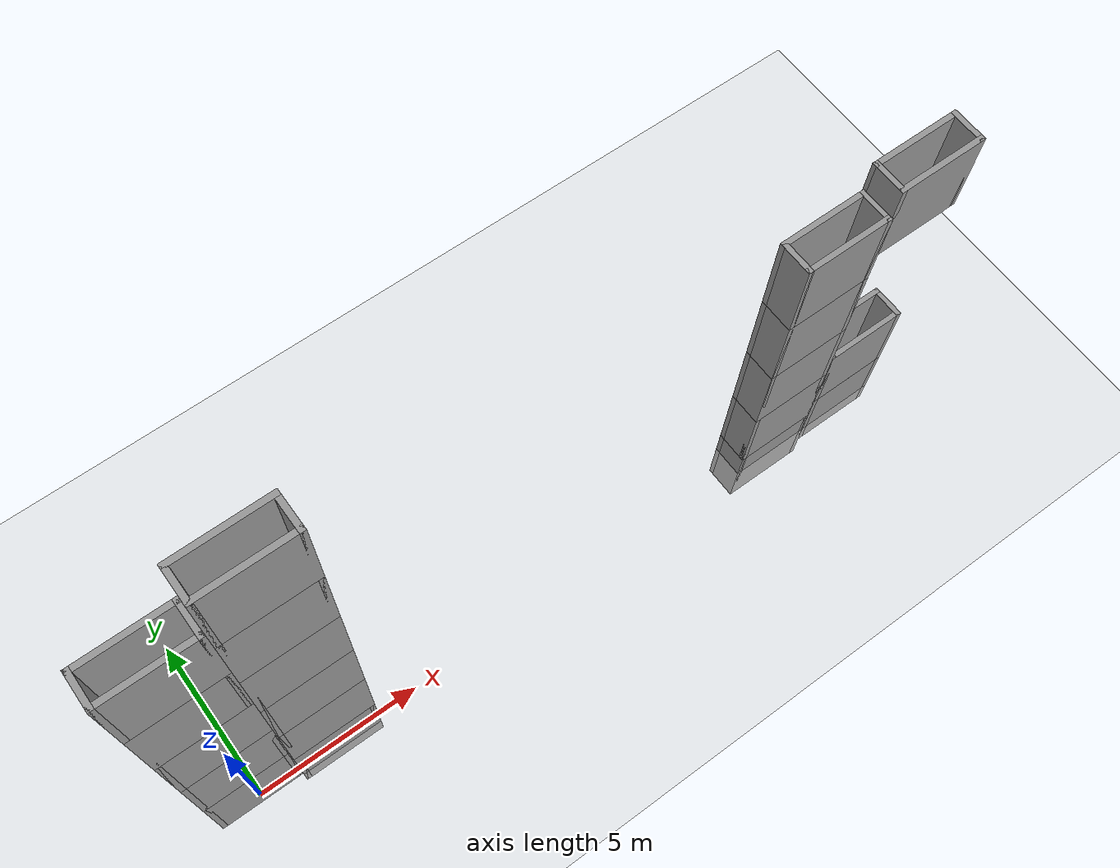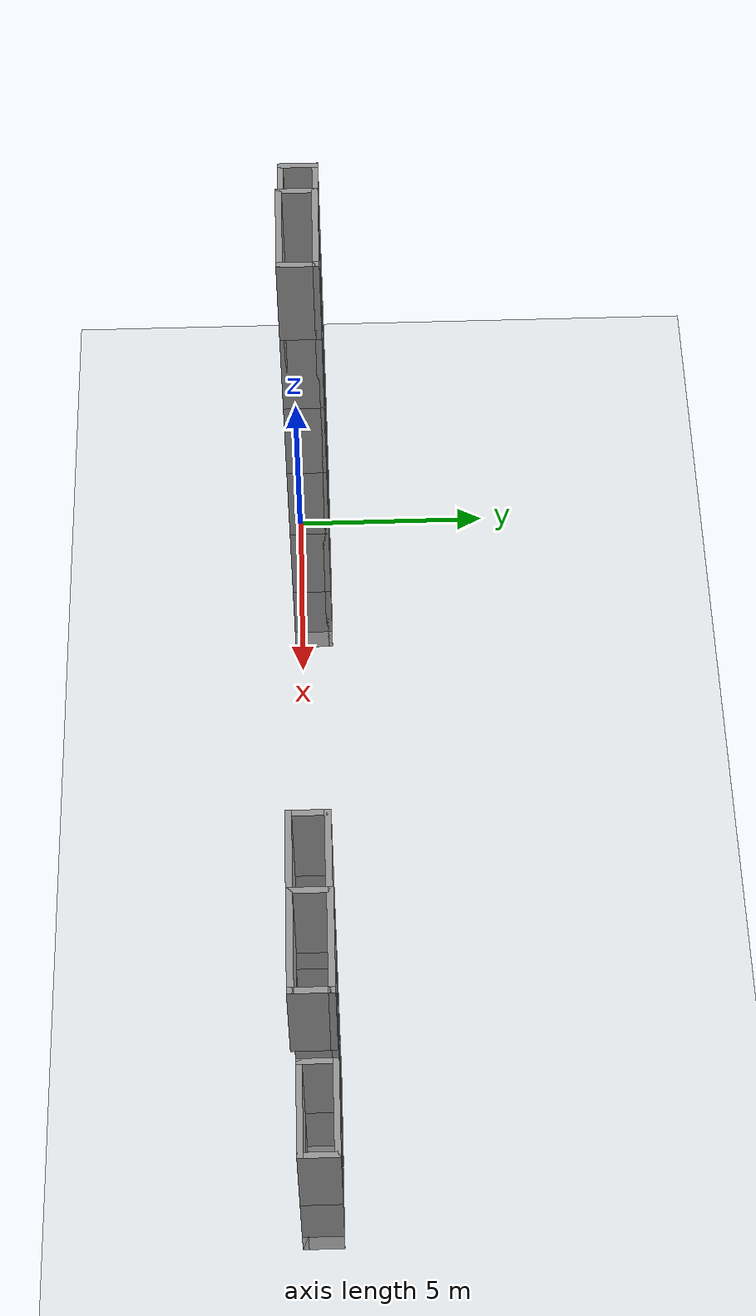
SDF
<sdf version="1.6">
 <world name="default">
  <model name="ground_plane">
   <static>1</static>
   <link name="link">
    <collision name="collision">
     <geometry><plane><normal>0 0 1</normal><size>100 100</size></plane></geometry>
     <surface><friction><ode><mu>100</mu><mu2>50</mu2></ode></friction></surface>
    </collision>
    <visual name="visual">
     <cast_shadows>0</cast_shadows>
     <geometry><plane><normal>0 0 1</normal><size>100 100</size></plane></geometry>
     <material>
      <script><uri>file://media/materials/scripts/gazebo.material</uri><name>Gazebo/Grey</name></script>
     </material>
    </visual>
   </link>
  </model>
  <model name="column25">
   <pose>-0.023775 0.294916 10.1143 0 -0 0</pose>
   <link name="Wall_0">
    <collision name="Wall_0_Collision">
     <geometry><box><size>2.5 0.15 2.5</size></box></geometry>
     <pose>0 0 1.25 0 -0 0</pose>
    </collision>
    <visual name="Wall_0_Visual">
     <pose>0 0 1.25 0 -0 0</pose>
     <geometry><box><size>2.5 0.15 2.5</size></box></geometry>
     <material>
      <script><uri>file://media/materials/scripts/gazebo.material</uri><name>Gazebo/Grey</name></script>
      <ambient>1 1 1 1</ambient>
     </material>
    </visual>
    <pose>0 -0.425 0 0 -0 0</pose>
   </link>
   <link name="Wall_1">
    <collision name="Wall_1_Collision">
     <geometry><box><size>1 0.15 2.5</size></box></geometry>
     <pose>0 0 1.25 0 -0 0</pose>
    </collision>
    <visual name="Wall_1_Visual">
     <pose>0 0 1.25 0 -0 0</pose>
     <geometry><box><size>1 0.15 2.5</size></box></geometry>
     <material>
      <script><uri>file://media/materials/scripts/gazebo.material</uri><name>Gazebo/Grey</name></script>
      <ambient>1 1 1 1</ambient>
     </material>
    </visual>
    <pose>1.175 0 0 0 -0 1.5708</pose>
   </link>
   <link name="Wall_2">
    <collision name="Wall_2_Collision">
     <geometry><box><size>2.5 0.15 2.5</size></box></geometry>
     <pose>0 0 1.25 0 -0 0</pose>
    </collision>
    <visual name="Wall_2_Visual">
     <pose>0 0 1.25 0 -0 0</pose>
     <geometry><box><size>2.5 0.15 2.5</size></box></geometry>
     <material>
      <script><uri>file://media/materials/scripts/gazebo.material</uri><name>Gazebo/Grey</name></script>
      <ambient>1 1 1 1</ambient>
     </material>
    </visual>
    <pose>0 0.425 0 0 -0 3.14159</pose>
   </link>
   <link name="Wall_3">
    <collision name="Wall_3_Collision">
     <geometry><box><size>1 0.15 2.5</size></box></geometry>
     <pose>0 0 1.25 0 -0 0</pose>
    </collision>
    <visual name="Wall_3_Visual">
     <pose>0 0 1.25 0 -0 0</pose>
     <geometry><box><size>1 0.15 2.5</size></box></geometry>
     <material>
      <script><uri>file://media/materials/scripts/gazebo.material</uri><name>Gazebo/Grey</name></script>
      <ambient>1 1 1 1</ambient>
     </material>
    </visual>
    <pose>-1.175 0 0 0 0 -1.5708</pose>
   </link>
   <static>1</static>
  </model>
  <model name="column25_clone">
   <pose>-0.023775 0.294916 7.61428 0 -0 0</pose>
   <link name="Wall_0">
    <collision name="Wall_0_Collision">
     <geometry><box><size>2.5 0.15 2.5</size></box></geometry>
     <pose>0 0 1.25 0 -0 0</pose>
    </collision>
    <visual name="Wall_0_Visual">
     <pose>0 0 1.25 0 -0 0</pose>
     <geometry><box><size>2.5 0.15 2.5</size></box></geometry>
     <material>
      <script><uri>file://media/materials/scripts/gazebo.material</uri><name>Gazebo/Grey</name></script>
      <ambient>1 1 1 1</ambient>
     </material>
    </visual>
    <pose>0 -0.425 0 0 -0 0</pose>
   </link>
   <link name="Wall_1">
    <collision name="Wall_1_Collision">
     <geometry><box><size>1 0.15 2.5</size></box></geometry>
     <pose>0 0 1.25 0 -0 0</pose>
    </collision>
    <visual name="Wall_1_Visual">
     <pose>0 0 1.25 0 -0 0</pose>
     <geometry><box><size>1 0.15 2.5</size></box></geometry>
     <material>
      <script><uri>file://media/materials/scripts/gazebo.material</uri><name>Gazebo/Grey</name></script>
      <ambient>1 1 1 1</ambient>
     </material>
    </visual>
    <pose>1.175 0 0 0 -0 1.5708</pose>
   </link>
   <link name="Wall_2">
    <collision name="Wall_2_Collision">
     <geometry><box><size>2.5 0.15 2.5</size></box></geometry>
     <pose>0 0 1.25 0 -0 0</pose>
    </collision>
    <visual name="Wall_2_Visual">
     <pose>0 0 1.25 0 -0 0</pose>
     <geometry><box><size>2.5 0.15 2.5</size></box></geometry>
     <material>
      <script><uri>file://media/materials/scripts/gazebo.material</uri><name>Gazebo/Grey</name></script>
      <ambient>1 1 1 1</ambient>
     </material>
    </visual>
    <pose>0 0.425 0 0 -0 3.14159</pose>
   </link>
   <link name="Wall_3">
    <collision name="Wall_3_Collision">
     <geometry><box><size>1 0.15 2.5</size></box></geometry>
     <pose>0 0 1.25 0 -0 0</pose>
    </collision>
    <visual name="Wall_3_Visual">
     <pose>0 0 1.25 0 -0 0</pose>
     <geometry><box><size>1 0.15 2.5</size></box></geometry>
     <material>
      <script><uri>file://media/materials/scripts/gazebo.material</uri><name>Gazebo/Grey</name></script>
      <ambient>1 1 1 1</ambient>
     </material>
    </visual>
    <pose>-1.175 0 0 0 0 -1.5708</pose>
   </link>
   <static>1</static>
  </model>
  <model name="column25_clone_0">
   <pose>-0.023776 0.294916 5.11428 0 -0 0</pose>
   <link name="Wall_0">
    <collision name="Wall_0_Collision">
     <geometry><box><size>2.5 0.15 2.5</size></box></geometry>
     <pose>0 0 1.25 0 -0 0</pose>
    </collision>
    <visual name="Wall_0_Visual">
     <pose>0 0 1.25 0 -0 0</pose>
     <geometry><box><size>2.5 0.15 2.5</size></box></geometry>
     <material>
      <script><uri>file://media/materials/scripts/gazebo.material</uri><name>Gazebo/Grey</name></script>
      <ambient>1 1 1 1</ambient>
     </material>
    </visual>
    <pose>0 -0.425 0 0 -0 0</pose>
   </link>
   <link name="Wall_1">
    <collision name="Wall_1_Collision">
     <geometry><box><size>1 0.15 2.5</size></box></geometry>
     <pose>0 0 1.25 0 -0 0</pose>
    </collision>
    <visual name="Wall_1_Visual">
     <pose>0 0 1.25 0 -0 0</pose>
     <geometry><box><size>1 0.15 2.5</size></box></geometry>
     <material>
      <script><uri>file://media/materials/scripts/gazebo.material</uri><name>Gazebo/Grey</name></script>
      <ambient>1 1 1 1</ambient>
     </material>
    </visual>
    <pose>1.175 0 0 0 -0 1.5708</pose>
   </link>
   <link name="Wall_2">
    <collision name="Wall_2_Collision">
     <geometry><box><size>2.5 0.15 2.5</size></box></geometry>
     <pose>0 0 1.25 0 -0 0</pose>
    </collision>
    <visual name="Wall_2_Visual">
     <pose>0 0 1.25 0 -0 0</pose>
     <geometry><box><size>2.5 0.15 2.5</size></box></geometry>
     <material>
      <script><uri>file://media/materials/scripts/gazebo.material</uri><name>Gazebo/Grey</name></script>
      <ambient>1 1 1 1</ambient>
     </material>
    </visual>
    <pose>0 0.425 0 0 -0 3.14159</pose>
   </link>
   <link name="Wall_3">
    <collision name="Wall_3_Collision">
     <geometry><box><size>1 0.15 2.5</size></box></geometry>
     <pose>0 0 1.25 0 -0 0</pose>
    </collision>
    <visual name="Wall_3_Visual">
     <pose>0 0 1.25 0 -0 0</pose>
     <geometry><box><size>1 0.15 2.5</size></box></geometry>
     <material>
      <script><uri>file://media/materials/scripts/gazebo.material</uri><name>Gazebo/Grey</name></script>
      <ambient>1 1 1 1</ambient>
     </material>
    </visual>
    <pose>-1.175 0 0 0 0 -1.5708</pose>
   </link>
   <static>1</static>
  </model>
  <model name="column25_clone_1">
   <pose>-0.023776 0.294916 2.61428 0 -0 0</pose>
   <link name="Wall_0">
    <collision name="Wall_0_Collision">
     <geometry><box><size>2.5 0.15 2.5</size></box></geometry>
     <pose>0 0 1.25 0 -0 0</pose>
    </collision>
    <visual name="Wall_0_Visual">
     <pose>0 0 1.25 0 -0 0</pose>
     <geometry><box><size>2.5 0.15 2.5</size></box></geometry>
     <material>
      <script><uri>file://media/materials/scripts/gazebo.material</uri><name>Gazebo/Grey</name></script>
      <ambient>1 1 1 1</ambient>
     </material>
    </visual>
    <pose>0 -0.425 0 0 -0 0</pose>
   </link>
   <link name="Wall_1">
    <collision name="Wall_1_Collision">
     <geometry><box><size>1 0.15 2.5</size></box></geometry>
     <pose>0 0 1.25 0 -0 0</pose>
    </collision>
    <visual name="Wall_1_Visual">
     <pose>0 0 1.25 0 -0 0</pose>
     <geometry><box><size>1 0.15 2.5</size></box></geometry>
     <material>
      <script><uri>file://media/materials/scripts/gazebo.material</uri><name>Gazebo/Grey</name></script>
      <ambient>1 1 1 1</ambient>
     </material>
    </visual>
    <pose>1.175 0 0 0 -0 1.5708</pose>
   </link>
   <link name="Wall_2">
    <collision name="Wall_2_Collision">
     <geometry><box><size>2.5 0.15 2.5</size></box></geometry>
     <pose>0 0 1.25 0 -0 0</pose>
    </collision>
    <visual name="Wall_2_Visual">
     <pose>0 0 1.25 0 -0 0</pose>
     <geometry><box><size>2.5 0.15 2.5</size></box></geometry>
     <material>
      <script><uri>file://media/materials/scripts/gazebo.material</uri><name>Gazebo/Grey</name></script>
      <ambient>1 1 1 1</ambient>
     </material>
    </visual>
    <pose>0 0.425 0 0 -0 3.14159</pose>
   </link>
   <link name="Wall_3">
    <collision name="Wall_3_Collision">
     <geometry><box><size>1 0.15 2.5</size></box></geometry>
     <pose>0 0 1.25 0 -0 0</pose>
    </collision>
    <visual name="Wall_3_Visual">
     <pose>0 0 1.25 0 -0 0</pose>
     <geometry><box><size>1 0.15 2.5</size></box></geometry>
     <material>
      <script><uri>file://media/materials/scripts/gazebo.material</uri><name>Gazebo/Grey</name></script>
      <ambient>1 1 1 1</ambient>
     </material>
    </visual>
    <pose>-1.175 0 0 0 0 -1.5708</pose>
   </link>
   <static>1</static>
  </model>
  <model name="column25_clone_2">
   <pose>-0.023776 0.294916 0.114275 0 -0 0</pose>
   <link name="Wall_0">
    <collision name="Wall_0_Collision">
     <geometry><box><size>2.5 0.15 2.5</size></box></geometry>
     <pose>0 0 1.25 0 -0 0</pose>
    </collision>
    <visual name="Wall_0_Visual">
     <pose>0 0 1.25 0 -0 0</pose>
     <geometry><box><size>2.5 0.15 2.5</size></box></geometry>
     <material>
      <script><uri>file://media/materials/scripts/gazebo.material</uri><name>Gazebo/Grey</name></script>
      <ambient>1 1 1 1</ambient>
     </material>
    </visual>
    <pose>0 -0.425 0 0 -0 0</pose>
   </link>
   <link name="Wall_1">
    <collision name="Wall_1_Collision">
     <geometry><box><size>1 0.15 2.5</size></box></geometry>
     <pose>0 0 1.25 0 -0 0</pose>
    </collision>
    <visual name="Wall_1_Visual">
     <pose>0 0 1.25 0 -0 0</pose>
     <geometry><box><size>1 0.15 2.5</size></box></geometry>
     <material>
      <script><uri>file://media/materials/scripts/gazebo.material</uri><name>Gazebo/Grey</name></script>
      <ambient>1 1 1 1</ambient>
     </material>
    </visual>
    <pose>1.175 0 0 0 -0 1.5708</pose>
   </link>
   <link name="Wall_2">
    <collision name="Wall_2_Collision">
     <geometry><box><size>2.5 0.15 2.5</size></box></geometry>
     <pose>0 0 1.25 0 -0 0</pose>
    </collision>
    <visual name="Wall_2_Visual">
     <pose>0 0 1.25 0 -0 0</pose>
     <geometry><box><size>2.5 0.15 2.5</size></box></geometry>
     <material>
      <script><uri>file://media/materials/scripts/gazebo.material</uri><name>Gazebo/Grey</name></script>
      <ambient>1 1 1 1</ambient>
     </material>
    </visual>
    <pose>0 0.425 0 0 -0 3.14159</pose>
   </link>
   <link name="Wall_3">
    <collision name="Wall_3_Collision">
     <geometry><box><size>1 0.15 2.5</size></box></geometry>
     <pose>0 0 1.25 0 -0 0</pose>
    </collision>
    <visual name="Wall_3_Visual">
     <pose>0 0 1.25 0 -0 0</pose>
     <geometry><box><size>1 0.15 2.5</size></box></geometry>
     <material>
      <script><uri>file://media/materials/scripts/gazebo.material</uri><name>Gazebo/Grey</name></script>
      <ambient>1 1 1 1</ambient>
     </material>
    </visual>
    <pose>-1.175 0 0 0 0 -1.5708</pose>
   </link>
   <static>1</static>
  </model>
  <model name="column25_clone_3">
   <pose>17.6084 0.281952 8.41814 0 -0 0</pose>
   <link name="Wall_0">
    <collision name="Wall_0_Collision">
     <geometry><box><size>2.5 0.15 2.5</size></box></geometry>
     <pose>0 0 1.25 0 -0 0</pose>
    </collision>
    <visual name="Wall_0_Visual">
     <pose>0 0 1.25 0 -0 0</pose>
     <geometry><box><size>2.5 0.15 2.5</size></box></geometry>
     <material>
      <script><uri>file://media/materials/scripts/gazebo.material</uri><name>Gazebo/Grey</name></script>
      <ambient>1 1 1 1</ambient>
     </material>
    </visual>
    <pose>0 -0.425 0 0 -0 0</pose>
   </link>
   <link name="Wall_1">
    <collision name="Wall_1_Collision">
     <geometry><box><size>1 0.15 2.5</size></box></geometry>
     <pose>0 0 1.25 0 -0 0</pose>
    </collision>
    <visual name="Wall_1_Visual">
     <pose>0 0 1.25 0 -0 0</pose>
     <geometry><box><size>1 0.15 2.5</size></box></geometry>
     <material>
      <script><uri>file://media/materials/scripts/gazebo.material</uri><name>Gazebo/Grey</name></script>
      <ambient>1 1 1 1</ambient>
     </material>
    </visual>
    <pose>1.175 0 0 0 -0 1.5708</pose>
   </link>
   <link name="Wall_2">
    <collision name="Wall_2_Collision">
     <geometry><box><size>2.5 0.15 2.5</size></box></geometry>
     <pose>0 0 1.25 0 -0 0</pose>
    </collision>
    <visual name="Wall_2_Visual">
     <pose>0 0 1.25 0 -0 0</pose>
     <geometry><box><size>2.5 0.15 2.5</size></box></geometry>
     <material>
      <script><uri>file://media/materials/scripts/gazebo.material</uri><name>Gazebo/Grey</name></script>
      <ambient>1 1 1 1</ambient>
     </material>
    </visual>
    <pose>0 0.425 0 0 -0 3.14159</pose>
   </link>
   <link name="Wall_3">
    <collision name="Wall_3_Collision">
     <geometry><box><size>1 0.15 2.5</size></box></geometry>
     <pose>0 0 1.25 0 -0 0</pose>
    </collision>
    <visual name="Wall_3_Visual">
     <pose>0 0 1.25 0 -0 0</pose>
     <geometry><box><size>1 0.15 2.5</size></box></geometry>
     <material>
      <script><uri>file://media/materials/scripts/gazebo.material</uri><name>Gazebo/Grey</name></script>
      <ambient>1 1 1 1</ambient>
     </material>
    </visual>
    <pose>-1.175 0 0 0 0 -1.5708</pose>
   </link>
   <static>1</static>
  </model>
  <model name="column25_clone_3_clone">
   <pose>17.6084 0.281952 5.91814 0 -0 0</pose>
   <link name="Wall_0">
    <collision name="Wall_0_Collision">
     <geometry><box><size>2.5 0.15 2.5</size></box></geometry>
     <pose>0 0 1.25 0 -0 0</pose>
    </collision>
    <visual name="Wall_0_Visual">
     <pose>0 0 1.25 0 -0 0</pose>
     <geometry><box><size>2.5 0.15 2.5</size></box></geometry>
     <material>
      <script><uri>file://media/materials/scripts/gazebo.material</uri><name>Gazebo/Grey</name></script>
      <ambient>1 1 1 1</ambient>
     </material>
    </visual>
    <pose>0 -0.425 0 0 -0 0</pose>
   </link>
   <link name="Wall_1">
    <collision name="Wall_1_Collision">
     <geometry><box><size>1 0.15 2.5</size></box></geometry>
     <pose>0 0 1.25 0 -0 0</pose>
    </collision>
    <visual name="Wall_1_Visual">
     <pose>0 0 1.25 0 -0 0</pose>
     <geometry><box><size>1 0.15 2.5</size></box></geometry>
     <material>
      <script><uri>file://media/materials/scripts/gazebo.material</uri><name>Gazebo/Grey</name></script>
      <ambient>1 1 1 1</ambient>
     </material>
    </visual>
    <pose>1.175 0 0 0 -0 1.5708</pose>
   </link>
   <link name="Wall_2">
    <collision name="Wall_2_Collision">
     <geometry><box><size>2.5 0.15 2.5</size></box></geometry>
     <pose>0 0 1.25 0 -0 0</pose>
    </collision>
    <visual name="Wall_2_Visual">
     <pose>0 0 1.25 0 -0 0</pose>
     <geometry><box><size>2.5 0.15 2.5</size></box></geometry>
     <material>
      <script><uri>file://media/materials/scripts/gazebo.material</uri><name>Gazebo/Grey</name></script>
      <ambient>1 1 1 1</ambient>
     </material>
    </visual>
    <pose>0 0.425 0 0 -0 3.14159</pose>
   </link>
   <link name="Wall_3">
    <collision name="Wall_3_Collision">
     <geometry><box><size>1 0.15 2.5</size></box></geometry>
     <pose>0 0 1.25 0 -0 0</pose>
    </collision>
    <visual name="Wall_3_Visual">
     <pose>0 0 1.25 0 -0 0</pose>
     <geometry><box><size>1 0.15 2.5</size></box></geometry>
     <material>
      <script><uri>file://media/materials/scripts/gazebo.material</uri><name>Gazebo/Grey</name></script>
      <ambient>1 1 1 1</ambient>
     </material>
    </visual>
    <pose>-1.175 0 0 0 0 -1.5708</pose>
   </link>
   <static>1</static>
  </model>
  <model name="column25_clone_3_clone_clone">
   <pose>17.6084 0.281952 3.41814 0 -0 0</pose>
   <link name="Wall_0">
    <collision name="Wall_0_Collision">
     <geometry><box><size>2.5 0.15 2.5</size></box></geometry>
     <pose>0 0 1.25 0 -0 0</pose>
    </collision>
    <visual name="Wall_0_Visual">
     <pose>0 0 1.25 0 -0 0</pose>
     <geometry><box><size>2.5 0.15 2.5</size></box></geometry>
     <material>
      <script><uri>file://media/materials/scripts/gazebo.material</uri><name>Gazebo/Grey</name></script>
      <ambient>1 1 1 1</ambient>
     </material>
    </visual>
    <pose>0 -0.425 0 0 -0 0</pose>
   </link>
   <link name="Wall_1">
    <collision name="Wall_1_Collision">
     <geometry><box><size>1 0.15 2.5</size></box></geometry>
     <pose>0 0 1.25 0 -0 0</pose>
    </collision>
    <visual name="Wall_1_Visual">
     <pose>0 0 1.25 0 -0 0</pose>
     <geometry><box><size>1 0.15 2.5</size></box></geometry>
     <material>
      <script><uri>file://media/materials/scripts/gazebo.material</uri><name>Gazebo/Grey</name></script>
      <ambient>1 1 1 1</ambient>
     </material>
    </visual>
    <pose>1.175 0 0 0 -0 1.5708</pose>
   </link>
   <link name="Wall_2">
    <collision name="Wall_2_Collision">
     <geometry><box><size>2.5 0.15 2.5</size></box></geometry>
     <pose>0 0 1.25 0 -0 0</pose>
    </collision>
    <visual name="Wall_2_Visual">
     <pose>0 0 1.25 0 -0 0</pose>
     <geometry><box><size>2.5 0.15 2.5</size></box></geometry>
     <material>
      <script><uri>file://media/materials/scripts/gazebo.material</uri><name>Gazebo/Grey</name></script>
      <ambient>1 1 1 1</ambient>
     </material>
    </visual>
    <pose>0 0.425 0 0 -0 3.14159</pose>
   </link>
   <link name="Wall_3">
    <collision name="Wall_3_Collision">
     <geometry><box><size>1 0.15 2.5</size></box></geometry>
     <pose>0 0 1.25 0 -0 0</pose>
    </collision>
    <visual name="Wall_3_Visual">
     <pose>0 0 1.25 0 -0 0</pose>
     <geometry><box><size>1 0.15 2.5</size></box></geometry>
     <material>
      <script><uri>file://media/materials/scripts/gazebo.material</uri><name>Gazebo/Grey</name></script>
      <ambient>1 1 1 1</ambient>
     </material>
    </visual>
    <pose>-1.175 0 0 0 0 -1.5708</pose>
   </link>
   <static>1</static>
  </model>
  <model name="column25_clone_3_clone_clone_0">
   <pose>17.6084 0.281952 0.918144 0 -0 0</pose>
   <link name="Wall_0">
    <collision name="Wall_0_Collision">
     <geometry><box><size>2.5 0.15 2.5</size></box></geometry>
     <pose>0 0 1.25 0 -0 0</pose>
    </collision>
    <visual name="Wall_0_Visual">
     <pose>0 0 1.25 0 -0 0</pose>
     <geometry><box><size>2.5 0.15 2.5</size></box></geometry>
     <material>
      <script><uri>file://media/materials/scripts/gazebo.material</uri><name>Gazebo/Grey</name></script>
      <ambient>1 1 1 1</ambient>
     </material>
    </visual>
    <pose>0 -0.425 0 0 -0 0</pose>
   </link>
   <link name="Wall_1">
    <collision name="Wall_1_Collision">
     <geometry><box><size>1 0.15 2.5</size></box></geometry>
     <pose>0 0 1.25 0 -0 0</pose>
    </collision>
    <visual name="Wall_1_Visual">
     <pose>0 0 1.25 0 -0 0</pose>
     <geometry><box><size>1 0.15 2.5</size></box></geometry>
     <material>
      <script><uri>file://media/materials/scripts/gazebo.material</uri><name>Gazebo/Grey</name></script>
      <ambient>1 1 1 1</ambient>
     </material>
    </visual>
    <pose>1.175 0 0 0 -0 1.5708</pose>
   </link>
   <link name="Wall_2">
    <collision name="Wall_2_Collision">
     <geometry><box><size>2.5 0.15 2.5</size></box></geometry>
     <pose>0 0 1.25 0 -0 0</pose>
    </collision>
    <visual name="Wall_2_Visual">
     <pose>0 0 1.25 0 -0 0</pose>
     <geometry><box><size>2.5 0.15 2.5</size></box></geometry>
     <material>
      <script><uri>file://media/materials/scripts/gazebo.material</uri><name>Gazebo/Grey</name></script>
      <ambient>1 1 1 1</ambient>
     </material>
    </visual>
    <pose>0 0.425 0 0 -0 3.14159</pose>
   </link>
   <link name="Wall_3">
    <collision name="Wall_3_Collision">
     <geometry><box><size>1 0.15 2.5</size></box></geometry>
     <pose>0 0 1.25 0 -0 0</pose>
    </collision>
    <visual name="Wall_3_Visual">
     <pose>0 0 1.25 0 -0 0</pose>
     <geometry><box><size>1 0.15 2.5</size></box></geometry>
     <material>
      <script><uri>file://media/materials/scripts/gazebo.material</uri><name>Gazebo/Grey</name></script>
      <ambient>1 1 1 1</ambient>
     </material>
    </visual>
    <pose>-1.175 0 0 0 0 -1.5708</pose>
   </link>
   <static>1</static>
  </model>
  <model name="column25_clone_3_clone_clone_0_clone">
   <pose>17.6084 0.281952 -1.58186 0 -0 0</pose>
   <link name="Wall_0">
    <collision name="Wall_0_Collision">
     <geometry><box><size>2.5 0.15 2.5</size></box></geometry>
     <pose>0 0 1.25 0 -0 0</pose>
    </collision>
    <visual name="Wall_0_Visual">
     <pose>0 0 1.25 0 -0 0</pose>
     <geometry><box><size>2.5 0.15 2.5</size></box></geometry>
     <material>
      <script><uri>file://media/materials/scripts/gazebo.material</uri><name>Gazebo/Grey</name></script>
      <ambient>1 1 1 1</ambient>
     </material>
    </visual>
    <pose>0 -0.425 0 0 -0 0</pose>
   </link>
   <link name="Wall_1">
    <collision name="Wall_1_Collision">
     <geometry><box><size>1 0.15 2.5</size></box></geometry>
     <pose>0 0 1.25 0 -0 0</pose>
    </collision>
    <visual name="Wall_1_Visual">
     <pose>0 0 1.25 0 -0 0</pose>
     <geometry><box><size>1 0.15 2.5</size></box></geometry>
     <material>
      <script><uri>file://media/materials/scripts/gazebo.material</uri><name>Gazebo/Grey</name></script>
      <ambient>1 1 1 1</ambient>
     </material>
    </visual>
    <pose>1.175 0 0 0 -0 1.5708</pose>
   </link>
   <link name="Wall_2">
    <collision name="Wall_2_Collision">
     <geometry><box><size>2.5 0.15 2.5</size></box></geometry>
     <pose>0 0 1.25 0 -0 0</pose>
    </collision>
    <visual name="Wall_2_Visual">
     <pose>0 0 1.25 0 -0 0</pose>
     <geometry><box><size>2.5 0.15 2.5</size></box></geometry>
     <material>
      <script><uri>file://media/materials/scripts/gazebo.material</uri><name>Gazebo/Grey</name></script>
      <ambient>1 1 1 1</ambient>
     </material>
    </visual>
    <pose>0 0.425 0 0 -0 3.14159</pose>
   </link>
   <link name="Wall_3">
    <collision name="Wall_3_Collision">
     <geometry><box><size>1 0.15 2.5</size></box></geometry>
     <pose>0 0 1.25 0 -0 0</pose>
    </collision>
    <visual name="Wall_3_Visual">
     <pose>0 0 1.25 0 -0 0</pose>
     <geometry><box><size>1 0.15 2.5</size></box></geometry>
     <material>
      <script><uri>file://media/materials/scripts/gazebo.material</uri><name>Gazebo/Grey</name></script>
      <ambient>1 1 1 1</ambient>
     </material>
    </visual>
    <pose>-1.175 0 0 0 0 -1.5708</pose>
   </link>
   <static>1</static>
  </model>
  <model name="column25_clone_2_clone">
   <pose>2.47622 0.294925 -0.719058 0 -0 7e-06</pose>
   <link name="Wall_0">
    <collision name="Wall_0_Collision">
     <geometry><box><size>2.5 0.15 2.5</size></box></geometry>
     <pose>0 0 1.25 0 -0 0</pose>
    </collision>
    <visual name="Wall_0_Visual">
     <pose>0 0 1.25 0 -0 0</pose>
     <geometry><box><size>2.5 0.15 2.5</size></box></geometry>
     <material>
      <script><uri>file://media/materials/scripts/gazebo.material</uri><name>Gazebo/Grey</name></script>
      <ambient>1 1 1 1</ambient>
     </material>
    </visual>
    <pose>0 -0.425 0 0 -0 0</pose>
   </link>
   <link name="Wall_1">
    <collision name="Wall_1_Collision">
     <geometry><box><size>1 0.15 2.5</size></box></geometry>
     <pose>0 0 1.25 0 -0 0</pose>
    </collision>
    <visual name="Wall_1_Visual">
     <pose>0 0 1.25 0 -0 0</pose>
     <geometry><box><size>1 0.15 2.5</size></box></geometry>
     <material>
      <script><uri>file://media/materials/scripts/gazebo.material</uri><name>Gazebo/Grey</name></script>
      <ambient>1 1 1 1</ambient>
     </material>
    </visual>
    <pose>1.175 0 0 0 -0 1.5708</pose>
   </link>
   <link name="Wall_2">
    <collision name="Wall_2_Collision">
     <geometry><box><size>2.5 0.15 2.5</size></box></geometry>
     <pose>0 0 1.25 0 -0 0</pose>
    </collision>
    <visual name="Wall_2_Visual">
     <pose>0 0 1.25 0 -0 0</pose>
     <geometry><box><size>2.5 0.15 2.5</size></box></geometry>
     <material>
      <script><uri>file://media/materials/scripts/gazebo.material</uri><name>Gazebo/Grey</name></script>
      <ambient>1 1 1 1</ambient>
     </material>
    </visual>
    <pose>0 0.425 0 0 -0 3.14159</pose>
   </link>
   <link name="Wall_3">
    <collision name="Wall_3_Collision">
     <geometry><box><size>1 0.15 2.5</size></box></geometry>
     <pose>0 0 1.25 0 -0 0</pose>
    </collision>
    <visual name="Wall_3_Visual">
     <pose>0 0 1.25 0 -0 0</pose>
     <geometry><box><size>1 0.15 2.5</size></box></geometry>
     <material>
      <script><uri>file://media/materials/scripts/gazebo.material</uri><name>Gazebo/Grey</name></script>
      <ambient>1 1 1 1</ambient>
     </material>
    </visual>
    <pose>-1.175 0 0 0 0 -1.5708</pose>
   </link>
   <static>1</static>
  </model>
  <model name="column25_clone_2_clone_clone">
   <pose>2.47622 0.294926 1.78094 0 -0 7e-06</pose>
   <link name="Wall_0">
    <collision name="Wall_0_Collision">
     <geometry><box><size>2.5 0.15 2.5</size></box></geometry>
     <pose>0 0 1.25 0 -0 0</pose>
    </collision>
    <visual name="Wall_0_Visual">
     <pose>0 0 1.25 0 -0 0</pose>
     <geometry><box><size>2.5 0.15 2.5</size></box></geometry>
     <material>
      <script><uri>file://media/materials/scripts/gazebo.material</uri><name>Gazebo/Grey</name></script>
      <ambient>1 1 1 1</ambient>
     </material>
    </visual>
    <pose>0 -0.425 0 0 -0 0</pose>
   </link>
   <link name="Wall_1">
    <collision name="Wall_1_Collision">
     <geometry><box><size>1 0.15 2.5</size></box></geometry>
     <pose>0 0 1.25 0 -0 0</pose>
    </collision>
    <visual name="Wall_1_Visual">
     <pose>0 0 1.25 0 -0 0</pose>
     <geometry><box><size>1 0.15 2.5</size></box></geometry>
     <material>
      <script><uri>file://media/materials/scripts/gazebo.material</uri><name>Gazebo/Grey</name></script>
      <ambient>1 1 1 1</ambient>
     </material>
    </visual>
    <pose>1.175 0 0 0 -0 1.5708</pose>
   </link>
   <link name="Wall_2">
    <collision name="Wall_2_Collision">
     <geometry><box><size>2.5 0.15 2.5</size></box></geometry>
     <pose>0 0 1.25 0 -0 0</pose>
    </collision>
    <visual name="Wall_2_Visual">
     <pose>0 0 1.25 0 -0 0</pose>
     <geometry><box><size>2.5 0.15 2.5</size></box></geometry>
     <material>
      <script><uri>file://media/materials/scripts/gazebo.material</uri><name>Gazebo/Grey</name></script>
      <ambient>1 1 1 1</ambient>
     </material>
    </visual>
    <pose>0 0.425 0 0 -0 3.14159</pose>
   </link>
   <link name="Wall_3">
    <collision name="Wall_3_Collision">
     <geometry><box><size>1 0.15 2.5</size></box></geometry>
     <pose>0 0 1.25 0 -0 0</pose>
    </collision>
    <visual name="Wall_3_Visual">
     <pose>0 0 1.25 0 -0 0</pose>
     <geometry><box><size>1 0.15 2.5</size></box></geometry>
     <material>
      <script><uri>file://media/materials/scripts/gazebo.material</uri><name>Gazebo/Grey</name></script>
      <ambient>1 1 1 1</ambient>
     </material>
    </visual>
    <pose>-1.175 0 0 0 0 -1.5708</pose>
   </link>
   <static>1</static>
  </model>
  <model name="column25_clone_2_clone_clone_clone">
   <pose>2.47622 0.294926 4.28094 0 -0 7e-06</pose>
   <link name="Wall_0">
    <collision name="Wall_0_Collision">
     <geometry><box><size>2.5 0.15 2.5</size></box></geometry>
     <pose>0 0 1.25 0 -0 0</pose>
    </collision>
    <visual name="Wall_0_Visual">
     <pose>0 0 1.25 0 -0 0</pose>
     <geometry><box><size>2.5 0.15 2.5</size></box></geometry>
     <material>
      <script><uri>file://media/materials/scripts/gazebo.material</uri><name>Gazebo/Grey</name></script>
      <ambient>1 1 1 1</ambient>
     </material>
    </visual>
    <pose>0 -0.425 0 0 -0 0</pose>
   </link>
   <link name="Wall_1">
    <collision name="Wall_1_Collision">
     <geometry><box><size>1 0.15 2.5</size></box></geometry>
     <pose>0 0 1.25 0 -0 0</pose>
    </collision>
    <visual name="Wall_1_Visual">
     <pose>0 0 1.25 0 -0 0</pose>
     <geometry><box><size>1 0.15 2.5</size></box></geometry>
     <material>
      <script><uri>file://media/materials/scripts/gazebo.material</uri><name>Gazebo/Grey</name></script>
      <ambient>1 1 1 1</ambient>
     </material>
    </visual>
    <pose>1.175 0 0 0 -0 1.5708</pose>
   </link>
   <link name="Wall_2">
    <collision name="Wall_2_Collision">
     <geometry><box><size>2.5 0.15 2.5</size></box></geometry>
     <pose>0 0 1.25 0 -0 0</pose>
    </collision>
    <visual name="Wall_2_Visual">
     <pose>0 0 1.25 0 -0 0</pose>
     <geometry><box><size>2.5 0.15 2.5</size></box></geometry>
     <material>
      <script><uri>file://media/materials/scripts/gazebo.material</uri><name>Gazebo/Grey</name></script>
      <ambient>1 1 1 1</ambient>
     </material>
    </visual>
    <pose>0 0.425 0 0 -0 3.14159</pose>
   </link>
   <link name="Wall_3">
    <collision name="Wall_3_Collision">
     <geometry><box><size>1 0.15 2.5</size></box></geometry>
     <pose>0 0 1.25 0 -0 0</pose>
    </collision>
    <visual name="Wall_3_Visual">
     <pose>0 0 1.25 0 -0 0</pose>
     <geometry><box><size>1 0.15 2.5</size></box></geometry>
     <material>
      <script><uri>file://media/materials/scripts/gazebo.material</uri><name>Gazebo/Grey</name></script>
      <ambient>1 1 1 1</ambient>
     </material>
    </visual>
    <pose>-1.175 0 0 0 0 -1.5708</pose>
   </link>
   <static>1</static>
  </model>
  <model name="column25_clone_2_clone_clone_clone_clone">
   <pose>2.47622 0.294926 6.78094 0 -0 7e-06</pose>
   <link name="Wall_0">
    <collision name="Wall_0_Collision">
     <geometry><box><size>2.5 0.15 2.5</size></box></geometry>
     <pose>0 0 1.25 0 -0 0</pose>
    </collision>
    <visual name="Wall_0_Visual">
     <pose>0 0 1.25 0 -0 0</pose>
     <geometry><box><size>2.5 0.15 2.5</size></box></geometry>
     <material>
      <script><uri>file://media/materials/scripts/gazebo.material</uri><name>Gazebo/Grey</name></script>
      <ambient>1 1 1 1</ambient>
     </material>
    </visual>
    <pose>0 -0.425 0 0 -0 0</pose>
   </link>
   <link name="Wall_1">
    <collision name="Wall_1_Collision">
     <geometry><box><size>1 0.15 2.5</size></box></geometry>
     <pose>0 0 1.25 0 -0 0</pose>
    </collision>
    <visual name="Wall_1_Visual">
     <pose>0 0 1.25 0 -0 0</pose>
     <geometry><box><size>1 0.15 2.5</size></box></geometry>
     <material>
      <script><uri>file://media/materials/scripts/gazebo.material</uri><name>Gazebo/Grey</name></script>
      <ambient>1 1 1 1</ambient>
     </material>
    </visual>
    <pose>1.175 0 0 0 -0 1.5708</pose>
   </link>
   <link name="Wall_2">
    <collision name="Wall_2_Collision">
     <geometry><box><size>2.5 0.15 2.5</size></box></geometry>
     <pose>0 0 1.25 0 -0 0</pose>
    </collision>
    <visual name="Wall_2_Visual">
     <pose>0 0 1.25 0 -0 0</pose>
     <geometry><box><size>2.5 0.15 2.5</size></box></geometry>
     <material>
      <script><uri>file://media/materials/scripts/gazebo.material</uri><name>Gazebo/Grey</name></script>
      <ambient>1 1 1 1</ambient>
     </material>
    </visual>
    <pose>0 0.425 0 0 -0 3.14159</pose>
   </link>
   <link name="Wall_3">
    <collision name="Wall_3_Collision">
     <geometry><box><size>1 0.15 2.5</size></box></geometry>
     <pose>0 0 1.25 0 -0 0</pose>
    </collision>
    <visual name="Wall_3_Visual">
     <pose>0 0 1.25 0 -0 0</pose>
     <geometry><box><size>1 0.15 2.5</size></box></geometry>
     <material>
      <script><uri>file://media/materials/scripts/gazebo.material</uri><name>Gazebo/Grey</name></script>
      <ambient>1 1 1 1</ambient>
     </material>
    </visual>
    <pose>-1.175 0 0 0 0 -1.5708</pose>
   </link>
   <static>1</static>
  </model>
  <model name="column25_clone_2_clone_clone_clone_clone_clone">
   <pose>2.47622 0.294926 9.28094 0 -0 7e-06</pose>
   <link name="Wall_0">
    <collision name="Wall_0_Collision">
     <geometry><box><size>2.5 0.15 2.5</size></box></geometry>
     <pose>0 0 1.25 0 -0 0</pose>
    </collision>
    <visual name="Wall_0_Visual">
     <pose>0 0 1.25 0 -0 0</pose>
     <geometry><box><size>2.5 0.15 2.5</size></box></geometry>
     <material>
      <script><uri>file://media/materials/scripts/gazebo.material</uri><name>Gazebo/Grey</name></script>
      <ambient>1 1 1 1</ambient>
     </material>
    </visual>
    <pose>0 -0.425 0 0 -0 0</pose>
   </link>
   <link name="Wall_1">
    <collision name="Wall_1_Collision">
     <geometry><box><size>1 0.15 2.5</size></box></geometry>
     <pose>0 0 1.25 0 -0 0</pose>
    </collision>
    <visual name="Wall_1_Visual">
     <pose>0 0 1.25 0 -0 0</pose>
     <geometry><box><size>1 0.15 2.5</size></box></geometry>
     <material>
      <script><uri>file://media/materials/scripts/gazebo.material</uri><name>Gazebo/Grey</name></script>
      <ambient>1 1 1 1</ambient>
     </material>
    </visual>
    <pose>1.175 0 0 0 -0 1.5708</pose>
   </link>
   <link name="Wall_2">
    <collision name="Wall_2_Collision">
     <geometry><box><size>2.5 0.15 2.5</size></box></geometry>
     <pose>0 0 1.25 0 -0 0</pose>
    </collision>
    <visual name="Wall_2_Visual">
     <pose>0 0 1.25 0 -0 0</pose>
     <geometry><box><size>2.5 0.15 2.5</size></box></geometry>
     <material>
      <script><uri>file://media/materials/scripts/gazebo.material</uri><name>Gazebo/Grey</name></script>
      <ambient>1 1 1 1</ambient>
     </material>
    </visual>
    <pose>0 0.425 0 0 -0 3.14159</pose>
   </link>
   <link name="Wall_3">
    <collision name="Wall_3_Collision">
     <geometry><box><size>1 0.15 2.5</size></box></geometry>
     <pose>0 0 1.25 0 -0 0</pose>
    </collision>
    <visual name="Wall_3_Visual">
     <pose>0 0 1.25 0 -0 0</pose>
     <geometry><box><size>1 0.15 2.5</size></box></geometry>
     <material>
      <script><uri>file://media/materials/scripts/gazebo.material</uri><name>Gazebo/Grey</name></script>
      <ambient>1 1 1 1</ambient>
     </material>
    </visual>
    <pose>-1.175 0 0 0 0 -1.5708</pose>
   </link>
   <static>1</static>
  </model>
  <model name="column25_clone_2_clone_clone_clone_clone_clone_clone">
   <pose>2.47622 0.294926 11.7809 0 -0 7e-06</pose>
   <link name="Wall_0">
    <collision name="Wall_0_Collision">
     <geometry><box><size>2.5 0.15 2.5</size></box></geometry>
     <pose>0 0 1.25 0 -0 0</pose>
    </collision>
    <visual name="Wall_0_Visual">
     <pose>0 0 1.25 0 -0 0</pose>
     <geometry><box><size>2.5 0.15 2.5</size></box></geometry>
     <material>
      <script><uri>file://media/materials/scripts/gazebo.material</uri><name>Gazebo/Grey</name></script>
      <ambient>1 1 1 1</ambient>
     </material>
    </visual>
    <pose>0 -0.425 0 0 -0 0</pose>
   </link>
   <link name="Wall_1">
    <collision name="Wall_1_Collision">
     <geometry><box><size>1 0.15 2.5</size></box></geometry>
     <pose>0 0 1.25 0 -0 0</pose>
    </collision>
    <visual name="Wall_1_Visual">
     <pose>0 0 1.25 0 -0 0</pose>
     <geometry><box><size>1 0.15 2.5</size></box></geometry>
     <material>
      <script><uri>file://media/materials/scripts/gazebo.material</uri><name>Gazebo/Grey</name></script>
      <ambient>1 1 1 1</ambient>
     </material>
    </visual>
    <pose>1.175 0 0 0 -0 1.5708</pose>
   </link>
   <link name="Wall_2">
    <collision name="Wall_2_Collision">
     <geometry><box><size>2.5 0.15 2.5</size></box></geometry>
     <pose>0 0 1.25 0 -0 0</pose>
    </collision>
    <visual name="Wall_2_Visual">
     <pose>0 0 1.25 0 -0 0</pose>
     <geometry><box><size>2.5 0.15 2.5</size></box></geometry>
     <material>
      <script><uri>file://media/materials/scripts/gazebo.material</uri><name>Gazebo/Grey</name></script>
      <ambient>1 1 1 1</ambient>
     </material>
    </visual>
    <pose>0 0.425 0 0 -0 3.14159</pose>
   </link>
   <link name="Wall_3">
    <collision name="Wall_3_Collision">
     <geometry><box><size>1 0.15 2.5</size></box></geometry>
     <pose>0 0 1.25 0 -0 0</pose>
    </collision>
    <visual name="Wall_3_Visual">
     <pose>0 0 1.25 0 -0 0</pose>
     <geometry><box><size>1 0.15 2.5</size></box></geometry>
     <material>
      <script><uri>file://media/materials/scripts/gazebo.material</uri><name>Gazebo/Grey</name></script>
      <ambient>1 1 1 1</ambient>
     </material>
    </visual>
    <pose>-1.175 0 0 0 0 -1.5708</pose>
   </link>
   <static>1</static>
  </model>
  <model name="column25_clone_3_clone_clone_0_clone_clone">
   <pose>20.1084 0.281962 -0.748527 0 -0 8e-06</pose>
   <link name="Wall_0">
    <collision name="Wall_0_Collision">
     <geometry><box><size>2.5 0.15 2.5</size></box></geometry>
     <pose>0 0 1.25 0 -0 0</pose>
    </collision>
    <visual name="Wall_0_Visual">
     <pose>0 0 1.25 0 -0 0</pose>
     <geometry><box><size>2.5 0.15 2.5</size></box></geometry>
     <material>
      <script><uri>file://media/materials/scripts/gazebo.material</uri><name>Gazebo/Grey</name></script>
      <ambient>1 1 1 1</ambient>
     </material>
    </visual>
    <pose>0 -0.425 0 0 -0 0</pose>
   </link>
   <link name="Wall_1">
    <collision name="Wall_1_Collision">
     <geometry><box><size>1 0.15 2.5</size></box></geometry>
     <pose>0 0 1.25 0 -0 0</pose>
    </collision>
    <visual name="Wall_1_Visual">
     <pose>0 0 1.25 0 -0 0</pose>
     <geometry><box><size>1 0.15 2.5</size></box></geometry>
     <material>
      <script><uri>file://media/materials/scripts/gazebo.material</uri><name>Gazebo/Grey</name></script>
      <ambient>1 1 1 1</ambient>
     </material>
    </visual>
    <pose>1.175 0 0 0 -0 1.5708</pose>
   </link>
   <link name="Wall_2">
    <collision name="Wall_2_Collision">
     <geometry><box><size>2.5 0.15 2.5</size></box></geometry>
     <pose>0 0 1.25 0 -0 0</pose>
    </collision>
    <visual name="Wall_2_Visual">
     <pose>0 0 1.25 0 -0 0</pose>
     <geometry><box><size>2.5 0.15 2.5</size></box></geometry>
     <material>
      <script><uri>file://media/materials/scripts/gazebo.material</uri><name>Gazebo/Grey</name></script>
      <ambient>1 1 1 1</ambient>
     </material>
    </visual>
    <pose>0 0.425 0 0 -0 3.14159</pose>
   </link>
   <link name="Wall_3">
    <collision name="Wall_3_Collision">
     <geometry><box><size>1 0.15 2.5</size></box></geometry>
     <pose>0 0 1.25 0 -0 0</pose>
    </collision>
    <visual name="Wall_3_Visual">
     <pose>0 0 1.25 0 -0 0</pose>
     <geometry><box><size>1 0.15 2.5</size></box></geometry>
     <material>
      <script><uri>file://media/materials/scripts/gazebo.material</uri><name>Gazebo/Grey</name></script>
      <ambient>1 1 1 1</ambient>
     </material>
    </visual>
    <pose>-1.175 0 0 0 0 -1.5708</pose>
   </link>
   <static>1</static>
  </model>
  <model name="column25_clone_3_clone_clone_0_clone_clone_clone">
   <pose>20.1084 0.281961 1.75147 0 -0 8e-06</pose>
   <link name="Wall_0">
    <collision name="Wall_0_Collision">
     <geometry><box><size>2.5 0.15 2.5</size></box></geometry>
     <pose>0 0 1.25 0 -0 0</pose>
    </collision>
    <visual name="Wall_0_Visual">
     <pose>0 0 1.25 0 -0 0</pose>
     <geometry><box><size>2.5 0.15 2.5</size></box></geometry>
     <material>
      <script><uri>file://media/materials/scripts/gazebo.material</uri><name>Gazebo/Grey</name></script>
      <ambient>1 1 1 1</ambient>
     </material>
    </visual>
    <pose>0 -0.425 0 0 -0 0</pose>
   </link>
   <link name="Wall_1">
    <collision name="Wall_1_Collision">
     <geometry><box><size>1 0.15 2.5</size></box></geometry>
     <pose>0 0 1.25 0 -0 0</pose>
    </collision>
    <visual name="Wall_1_Visual">
     <pose>0 0 1.25 0 -0 0</pose>
     <geometry><box><size>1 0.15 2.5</size></box></geometry>
     <material>
      <script><uri>file://media/materials/scripts/gazebo.material</uri><name>Gazebo/Grey</name></script>
      <ambient>1 1 1 1</ambient>
     </material>
    </visual>
    <pose>1.175 0 0 0 -0 1.5708</pose>
   </link>
   <link name="Wall_2">
    <collision name="Wall_2_Collision">
     <geometry><box><size>2.5 0.15 2.5</size></box></geometry>
     <pose>0 0 1.25 0 -0 0</pose>
    </collision>
    <visual name="Wall_2_Visual">
     <pose>0 0 1.25 0 -0 0</pose>
     <geometry><box><size>2.5 0.15 2.5</size></box></geometry>
     <material>
      <script><uri>file://media/materials/scripts/gazebo.material</uri><name>Gazebo/Grey</name></script>
      <ambient>1 1 1 1</ambient>
     </material>
    </visual>
    <pose>0 0.425 0 0 -0 3.14159</pose>
   </link>
   <link name="Wall_3">
    <collision name="Wall_3_Collision">
     <geometry><box><size>1 0.15 2.5</size></box></geometry>
     <pose>0 0 1.25 0 -0 0</pose>
    </collision>
    <visual name="Wall_3_Visual">
     <pose>0 0 1.25 0 -0 0</pose>
     <geometry><box><size>1 0.15 2.5</size></box></geometry>
     <material>
      <script><uri>file://media/materials/scripts/gazebo.material</uri><name>Gazebo/Grey</name></script>
      <ambient>1 1 1 1</ambient>
     </material>
    </visual>
    <pose>-1.175 0 0 0 0 -1.5708</pose>
   </link>
   <static>1</static>
  </model>
  <model name="column25_clone_3_clone_clone_0_clone_clone_clone_clone_clone_clone">
   <pose>20.0929 0.309515 9.36051 0 -0 8e-06</pose>
   <link name="Wall_0">
    <collision name="Wall_0_Collision">
     <geometry><box><size>2.5 0.15 2.5</size></box></geometry>
     <pose>0 0 1.25 0 -0 0</pose>
    </collision>
    <visual name="Wall_0_Visual">
     <pose>0 0 1.25 0 -0 0</pose>
     <geometry><box><size>2.5 0.15 2.5</size></box></geometry>
     <material>
      <script><uri>file://media/materials/scripts/gazebo.material</uri><name>Gazebo/Grey</name></script>
      <ambient>1 1 1 1</ambient>
     </material>
    </visual>
    <pose>0 -0.425 0 0 -0 0</pose>
   </link>
   <link name="Wall_1">
    <collision name="Wall_1_Collision">
     <geometry><box><size>1 0.15 2.5</size></box></geometry>
     <pose>0 0 1.25 0 -0 0</pose>
    </collision>
    <visual name="Wall_1_Visual">
     <pose>0 0 1.25 0 -0 0</pose>
     <geometry><box><size>1 0.15 2.5</size></box></geometry>
     <material>
      <script><uri>file://media/materials/scripts/gazebo.material</uri><name>Gazebo/Grey</name></script>
      <ambient>1 1 1 1</ambient>
     </material>
    </visual>
    <pose>1.175 0 0 0 -0 1.5708</pose>
   </link>
   <link name="Wall_2">
    <collision name="Wall_2_Collision">
     <geometry><box><size>2.5 0.15 2.5</size></box></geometry>
     <pose>0 0 1.25 0 -0 0</pose>
    </collision>
    <visual name="Wall_2_Visual">
     <pose>0 0 1.25 0 -0 0</pose>
     <geometry><box><size>2.5 0.15 2.5</size></box></geometry>
     <material>
      <script><uri>file://media/materials/scripts/gazebo.material</uri><name>Gazebo/Grey</name></script>
      <ambient>1 1 1 1</ambient>
     </material>
    </visual>
    <pose>0 0.425 0 0 -0 3.14159</pose>
   </link>
   <link name="Wall_3">
    <collision name="Wall_3_Collision">
     <geometry><box><size>1 0.15 2.5</size></box></geometry>
     <pose>0 0 1.25 0 -0 0</pose>
    </collision>
    <visual name="Wall_3_Visual">
     <pose>0 0 1.25 0 -0 0</pose>
     <geometry><box><size>1 0.15 2.5</size></box></geometry>
     <material>
      <script><uri>file://media/materials/scripts/gazebo.material</uri><name>Gazebo/Grey</name></script>
      <ambient>1 1 1 1</ambient>
     </material>
    </visual>
    <pose>-1.175 0 0 0 0 -1.5708</pose>
   </link>
   <static>1</static>
  </model>
 </world>
</sdf>
